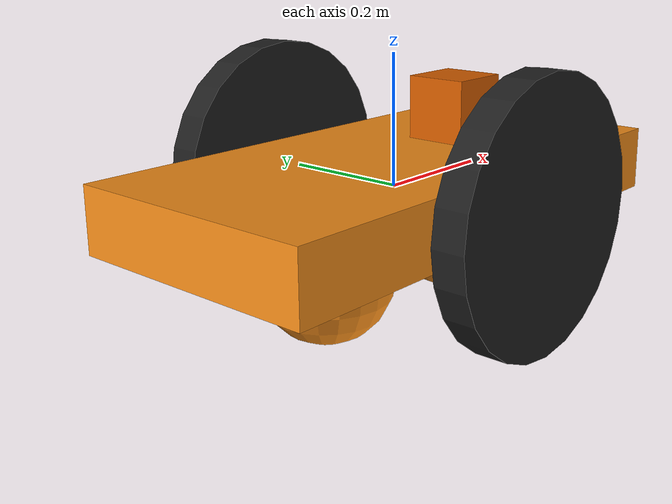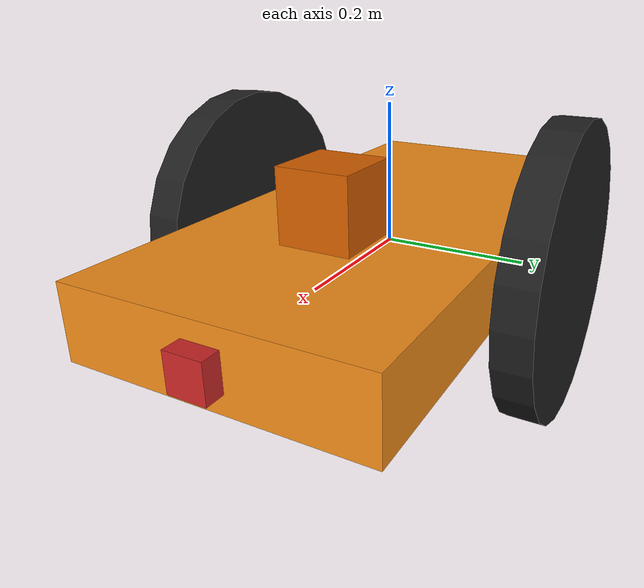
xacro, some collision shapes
<?xml version='1.0'?>

<robot name="my_robot" xmlns:xacro="http://www.ros.org/wiki/xacro">
  <xacro:include filename="$(find my_robot)/urdf/my_robot.gazebo" />
  <link name="robot_footprint"></link>

  <joint name="robot_footprint_joint" type="fixed">
    <origin xyz="0 0 0" rpy="0 0 0" />
    <parent link="robot_footprint"/>
    <child link="chassis" />
  </joint>

  <link name='chassis'>
    <pose>0 0 0.2 0 0 0</pose>

    <inertial>
      <mass value="15.0"/>
      <origin xyz="0.0 0 0" rpy=" 0 0 0"/>
      <inertia
          ixx="0.1" ixy="0" ixz="0"
          iyy="0.1" iyz="0"
          izz="0.1"
      />
    </inertial>

    <collision name='collision'>
      <origin xyz="0 0 0" rpy=" 0 0 0"/>
      <geometry>
        <box size=".8 .4 .1"/>
      </geometry>
    </collision>

    <visual name='chassis_visual'>
      <origin xyz="0 0 0" rpy=" 0 0 0"/>
      <geometry>
        <box size=".8 .4 .1"/>
      </geometry>
    </visual>

    <collision name='back_caster_collision'>
      <origin xyz="-0.15 0 -0.1" rpy=" 0 0 0"/>
      <geometry>
        <sphere radius="0.0999"/>
      </geometry>
    </collision>

    <visual name='back_caster_visual'>
      <origin xyz="-0.15 0 -0.1" rpy=" 0 0 0"/>
      <geometry>
        <sphere radius="0.1"/>
      </geometry>
    </visual>

    <collision name='front_caster_collision'>
      <origin xyz="0.15 0 -0.1" rpy=" 0 0 0"/>
      <geometry>
        <sphere radius="0.0999"/>
      </geometry>
    </collision>

    <visual name='front_caster_visual'>
      <origin xyz="0.15 0 -0.1" rpy=" 0 0 0"/>
      <geometry>
        <sphere radius="0.1"/>
      </geometry>
    </visual>

  </link>

  <link name='right_wheel'>
    <visual name='right_wheel_visual'>
      <origin xyz="0 0 0" rpy="0 1.5707 1.5707"/>
      <geometry>
        <cylinder radius="0.2" length="0.05"/>
      </geometry>
    </visual>

    <collision name='right_wheel_collision'>
      <origin xyz="0 0 0" rpy="0 1.5707 1.5707"/>
      <geometry>
        <cylinder radius="0.2" length="0.05"/>
      </geometry>
    </collision>

    <inertial name='right_wheel_inertial'>
      <origin xyz="0 0 0" rpy="0 1.5707 1.5707"/>
      <mass value="5"/>
      <inertia
        ixx="0.1" ixy="0" ixz="0"
        iyy="0.1" iyz="0"
        izz="0.1"/>
    </inertial>
  </link>

  <link name='left_wheel'>
    <visual name='left_wheel_visual'>
      <origin xyz="0 0 0" rpy="0 1.5707 1.5707"/>
      <geometry>
        <cylinder radius="0.2" length="0.05"/>
      </geometry>
    </visual>

    <collision name='left_wheel_collision'>
      <origin xyz="0 0 0" rpy="0 1.5707 1.5707"/>
      <geometry>
        <cylinder radius="0.2" length="0.05"/>
      </geometry>
    </collision>

    <inertial name='left_wheel_inertial'>
      <origin xyz="0 0 0" rpy="0 1.5707 1.5707"/>
      <mass value="5"/>
      <inertia
        ixx="0.1" ixy="0" ixz="0"
        iyy="0.1" iyz="0"
        izz="0.1"/>
    </inertial>
  </link>

  <joint type="continuous" name="right_wheel_hinge">
    <origin xyz="0 -0.25 0" rpy="0 0 0"/>
    <child link="right_wheel"/>
    <parent link="chassis"/>
    <axis xyz="0 1 0" rpy="0 0 0"/>
    <limit effort="10000" velocity="1000"/>
    <dynamics damping="1.0" friction="1.0"/>
  </joint>

  <joint type="continuous" name="left_wheel_hinge">
    <origin xyz="0 0.25 0" rpy="0 0 0"/>
    <child link="left_wheel"/>
    <parent link="chassis"/>
    <axis xyz="0 1 0" rpy="0 0 0"/>
    <limit effort="10000" velocity="1000"/>
    <dynamics damping="1.0" friction="1.0"/>
  </joint>

  <link name="camera">
    <visual>
      <origin xyz="0 0 0" rpy="0 0 0"/>
      <geometry>
        <box size="0.05 0.05 0.05"/>
      </geometry>
    </visual>

    <collision>
      <origin xyz="0 0 0" rpy="0 0 0"/>
      <geometry>
        <box size="0.05 0.05 0.05"/>
      </geometry>
    </collision>

    <inertial>
      <mass value="0.1"/>
      <origin xyz="0.05 0.05 0.05" rpy="0 0 0"/>
      <inertia ixx="1e-6" ixy="0" ixz="0" iyy="1e-6" iyz="0" izz="1e-6"/>
    </inertial>
  </link>

  <joint name="camera_joint" type="fixed">
    <axis xyz="0 1 0"/>
    <origin xyz="0.4 0 0" rpy="0 0 0"/>
    <parent link="chassis"/>
    <child link="camera"/>
  </joint>

  <link name="hokuyo">
    <origin xyz="0 0 0" rpy="0 0 0"/>
    <visual>
      <geometry>
        <mesh filename="package://my_robot/meshes/hokuyo.dae"/>
      </geometry>
    </visual>

    <collision>
      <geometry>
        <box size="0.1 0.1 0.1"/>
      </geometry>
    </collision>

    <inertial>
      <mass value="1e-5"/>
      <inertia ixx="1e-6" ixy="0" ixz="0" iyy="1e-6" iyz="0" izz="1e-6"/>
    </inertial>
  </link>

  <joint name="hokuyo_joint" type="fixed">
    <axis xyz="0 1 0"/>
    <origin xyz="0.15 0 0.1" rpy="0 0 0"/>
    <parent link="chassis"/>
    <child link="hokuyo"/>
  </joint>

  <joint name="camera_optical_joint" type="fixed">
    <origin xyz="0 0 0" rpy="-1.5707 0 -1.5707"/>
    <parent link="camera"/>
    <child link="camera_link_optical"/>
  </joint>

  <link name="camera_link_optical">
  </link>

  <gazebo reference="right_wheel">
    <material>Gazebo/Black</material>
  </gazebo>
  <gazebo reference="left_wheel">
    <material>Gazebo/Black</material>
  </gazebo>
  <gazebo reference="chassis">
    <material>Gazebo/Orange</material>
  </gazebo>
  <gazebo reference="camera">
    <material>Gazebo/Red</material>
  </gazebo>
</robot>
